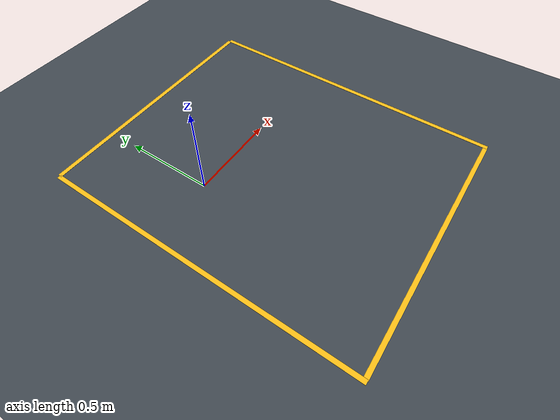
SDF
<?xml version='1.0' encoding='utf-8'?>
<sdf version="1.8">
  <world name="empty">
    <physics name="1ms" type="ignored">
      <max_step_size>0.001</max_step_size>
      <real_time_factor>1.0</real_time_factor>
    </physics>
    <plugin filename="gz-sim-physics-system" name="gz::sim::systems::Physics" />
    <plugin filename="gz-sim-user-commands-system" name="gz::sim::systems::UserCommands" />
    <plugin filename="gz-sim-scene-broadcaster-system" name="gz::sim::systems::SceneBroadcaster" />
    <plugin filename="gz-sim-contact-system" name="gz::sim::systems::Contact" />
    <light type="directional" name="sun">
      <cast_shadows>true</cast_shadows>
      <pose>0 0 10 0 0 0</pose>
      <diffuse>0.8 0.8 0.8 1</diffuse>
      <specular>0.2 0.2 0.2 1</specular>
      <direction>-0.5 0.1 -0.9</direction>
    </light>
    <model name="ground_plane">
      <static>true</static>
      <link name="link">
        <collision name="collision">
          <geometry>
            <plane>
              <normal>0 0 1</normal>
              <size>100 100</size>
            </plane>
          </geometry>
        </collision>
        <visual name="visual">
          <geometry>
            <plane>
              <normal>0 0 1</normal>
              <size>100 100</size>
            </plane>
          </geometry>
          <material>
            <ambient>0.24 0.27 0.30 1</ambient>
            <diffuse>0.24 0.27 0.30 1</diffuse>
            <specular>0.05 0.05 0.05 1</specular>
          </material>
        </visual>
      </link>
    </model>
    <gui fullscreen="false">
      <plugin filename="MinimalScene" name="3D View">
        <gz-gui>
          <title>3D View</title>
          <property type="bool" key="showTitleBar">false</property>
          <property type="string" key="state">docked</property>
        </gz-gui>
        <engine>ogre</engine>
        <scene>scene</scene>
        <ambient_light>0.65 0.65 0.65</ambient_light>
        <background_color>0.12 0.15 0.19</background_color>
        <camera_pose>1.55 -1.8 1.4 0 0.46 2.25</camera_pose>
        <camera_clip>
          <near>0.02</near>
          <far>50</far>
        </camera_clip>
      </plugin>
      <plugin filename="GzSceneManager" name="Scene Manager">
        <gz-gui>
          <property key="resizable" type="bool">false</property>
          <property key="showTitleBar" type="bool">false</property>
          <property key="state" type="string">floating</property>
          <property key="width" type="double">5</property>
          <property key="height" type="double">5</property>
        </gz-gui>
      </plugin>
      <plugin filename="InteractiveViewControl" name="Interactive view control">
        <gz-gui>
          <property key="resizable" type="bool">false</property>
          <property key="showTitleBar" type="bool">false</property>
          <property key="state" type="string">floating</property>
          <property key="width" type="double">5</property>
          <property key="height" type="double">5</property>
        </gz-gui>
      </plugin>
      <plugin filename="CameraTracking" name="Camera Tracking">
        <gz-gui>
          <property key="resizable" type="bool">false</property>
          <property key="showTitleBar" type="bool">false</property>
          <property key="state" type="string">floating</property>
          <property key="width" type="double">5</property>
          <property key="height" type="double">5</property>
        </gz-gui>
      </plugin>
      <plugin filename="MarkerManager" name="Marker manager">
        <gz-gui>
          <property key="resizable" type="bool">false</property>
          <property key="showTitleBar" type="bool">false</property>
          <property key="state" type="string">floating</property>
          <property key="width" type="double">5</property>
          <property key="height" type="double">5</property>
        </gz-gui>
      </plugin>
      <plugin filename="SelectEntities" name="Select Entities">
        <gz-gui>
          <property key="resizable" type="bool">false</property>
          <property key="showTitleBar" type="bool">false</property>
          <property key="state" type="string">floating</property>
          <property key="width" type="double">5</property>
          <property key="height" type="double">5</property>
        </gz-gui>
      </plugin>
      <plugin filename="Spawn" name="Spawn Entities">
        <gz-gui>
          <property key="resizable" type="bool">false</property>
          <property key="showTitleBar" type="bool">false</property>
          <property key="state" type="string">floating</property>
          <property key="width" type="double">5</property>
          <property key="height" type="double">5</property>
        </gz-gui>
      </plugin>
      <plugin filename="EntityContextMenuPlugin" name="Entity context menu">
        <gz-gui>
          <property key="resizable" type="bool">false</property>
          <property key="showTitleBar" type="bool">false</property>
          <property key="state" type="string">floating</property>
          <property key="width" type="double">5</property>
          <property key="height" type="double">5</property>
        </gz-gui>
      </plugin>
      <plugin filename="WorldControl" name="World control">
        <gz-gui>
          <title>World control</title>
          <property type="bool" key="showTitleBar">false</property>
          <property type="bool" key="resizable">false</property>
          <property type="double" key="height">72</property>
          <property type="double" key="z">1</property>
          <property type="string" key="state">floating</property>
          <anchors target="3D View">
            <line own="left" target="left" />
            <line own="bottom" target="bottom" />
          </anchors>
        </gz-gui>
        <play_pause>true</play_pause>
        <step>true</step>
        <start_paused>false</start_paused>
      </plugin>
      <plugin filename="WorldStats" name="World stats">
        <gz-gui>
          <title>World stats</title>
          <property type="bool" key="showTitleBar">false</property>
          <property type="bool" key="resizable">false</property>
          <property type="double" key="height">110</property>
          <property type="double" key="width">290</property>
          <property type="string" key="state">floating</property>
          <anchors target="3D View">
            <line own="right" target="right" />
            <line own="bottom" target="bottom" />
          </anchors>
        </gz-gui>
        <sim_time>true</sim_time>
        <real_time>true</real_time>
        <real_time_factor>true</real_time_factor>
        <iterations>true</iterations>
      </plugin>
    </gui>
    <model name="cell_floor_markings">
      <static>true</static>
      <link name="markings">
        <visual name="boundary_0">
          <pose>0.35 -1.12 0.001 0 0 0</pose>
          <geometry>
            <box>
              <size>1.45 0.024 0.001</size>
            </box>
          </geometry>
          <material>
            <ambient>0.95 0.72 0.08 1</ambient>
            <diffuse>0.95 0.72 0.08 1</diffuse>
          </material>
        </visual>
        <visual name="boundary_1">
          <pose>0.35 0.67 0.001 0 0 0</pose>
          <geometry>
            <box>
              <size>1.45 0.024 0.001</size>
            </box>
          </geometry>
          <material>
            <ambient>0.95 0.72 0.08 1</ambient>
            <diffuse>0.95 0.72 0.08 1</diffuse>
          </material>
        </visual>
        <visual name="boundary_2">
          <pose>-0.38 -0.23 0.001 0 0 0</pose>
          <geometry>
            <box>
              <size>0.024 1.8 0.001</size>
            </box>
          </geometry>
          <material>
            <ambient>0.95 0.72 0.08 1</ambient>
            <diffuse>0.95 0.72 0.08 1</diffuse>
          </material>
        </visual>
        <visual name="boundary_3">
          <pose>1.08 -0.23 0.001 0 0 0</pose>
          <geometry>
            <box>
              <size>0.024 1.8 0.001</size>
            </box>
          </geometry>
          <material>
            <ambient>0.95 0.72 0.08 1</ambient>
            <diffuse>0.95 0.72 0.08 1</diffuse>
          </material>
        </visual>
      </link>
    </model>
  </world>
</sdf>
